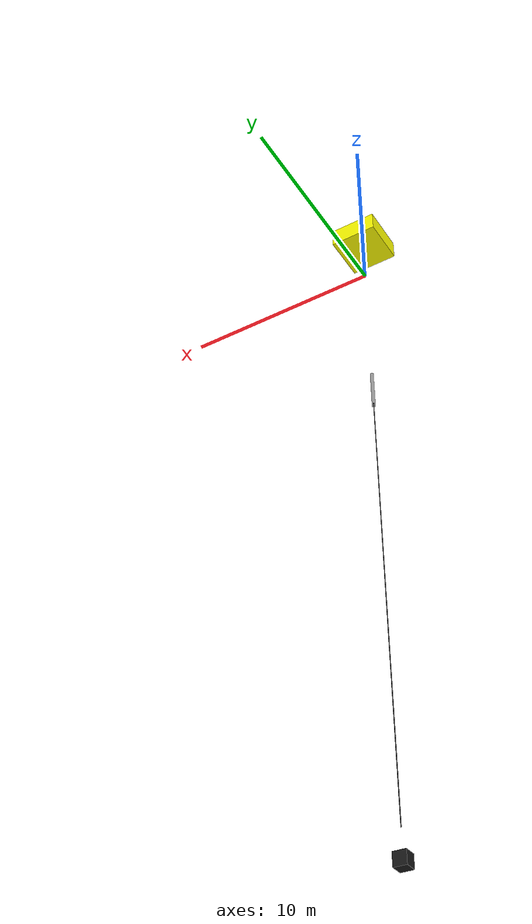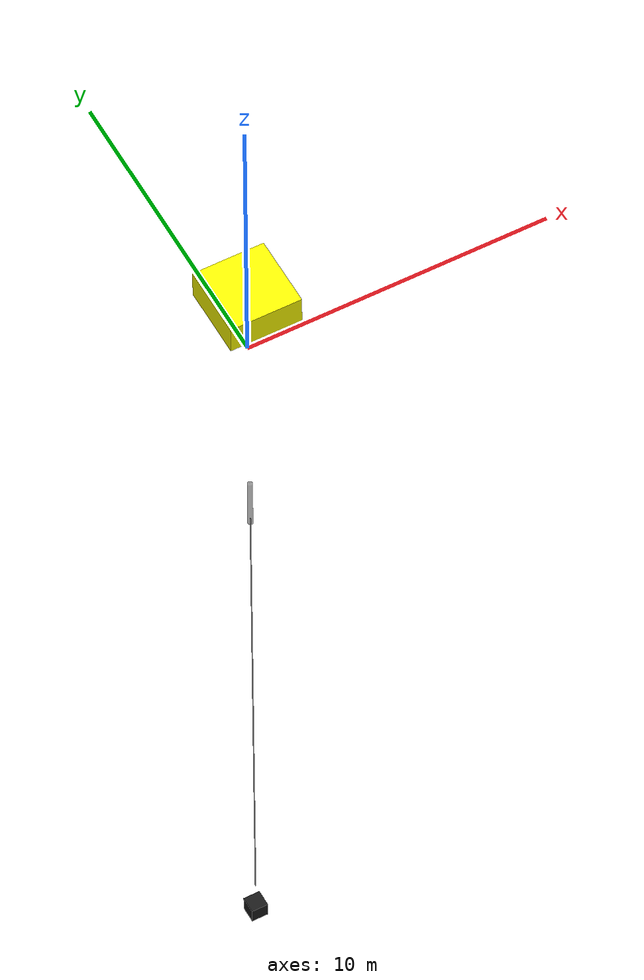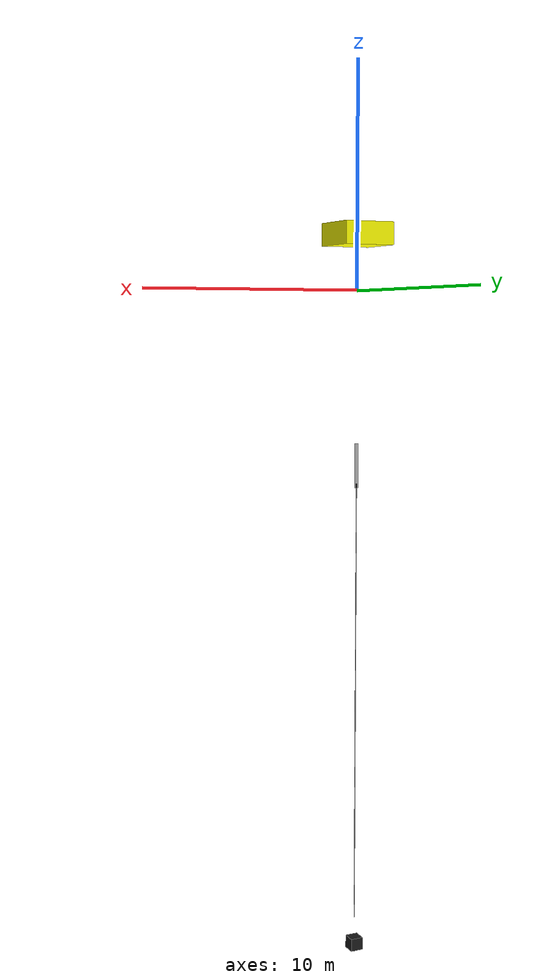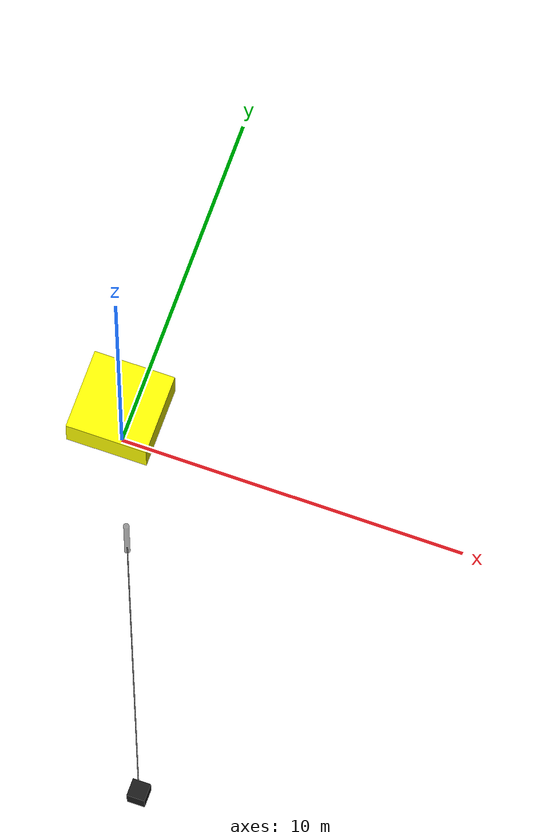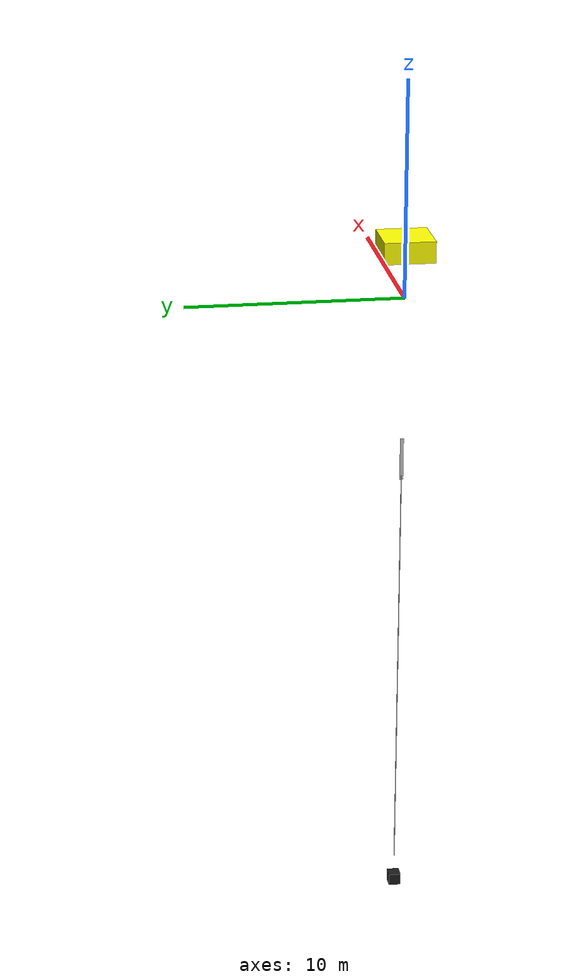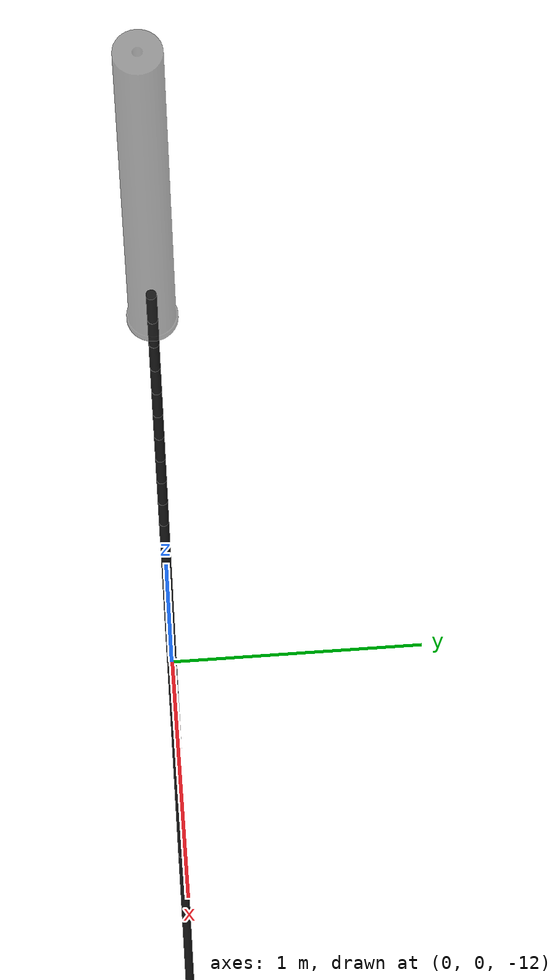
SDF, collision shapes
<?xml version="1.0" ?>
<sdf version="1.7">
    <model name="Hydraulics Test">

      <link name="Buoy">
        <pose relative_to="__model__">0 0 0 0 0 0</pose>
        <inertial>
            <pose>0 0 2.13 0 0 0</pose>
            <mass>1400</mass>
            <inertia>
                <ixx>1429</ixx>
                <ixy>6.77</ixy>
                <ixz>4.69</ixz>
                <iyy>670.31</iyy>
                <iyz>30.5</iyz>
                <izz>1476</izz>
            </inertia>
        </inertial>
        <visual name="visual_Buoy">
            <geometry>
                <mesh>
                    <uri>package://buoy_description/models/mbari_wec/meshes/buoy_float.stl</uri>
                </mesh>
            </geometry>
            <!--color-->
            <material>
                <ambient>1.0 1.0 0.0 1</ambient>
                <diffuse>1.0 1.0 0.0 1</diffuse>
                <specular>1.0 1.0 0.0 1</specular>
            </material>
        </visual>
        <collision name="collision">
            <pose>0 0 2.46 0 0 0 </pose>
            <geometry>
                <box>
                    <size>2.34 2.34 1</size>
                </box>
            </geometry>
        </collision>
        <sensor name='xbow_imu' type='imu'>
        <topic>Buoy_link/xbow_imu</topic>
        <update_rate>50</update_rate>
        <imu>
          <orientation_reference_frame>
            <localization>ENU</localization>
          </orientation_reference_frame>
        </imu>
        <always_on>1</always_on>
        <visualize>true</visualize>
      </sensor>
     </link>

     <link name="PTO">
        <pose relative_to="Buoy">0 0 0 0 0 0</pose>
        <inertial>
            <pose>0 0 -3.67 0 0 0</pose>
            <mass>605</mass>
            <inertia>
            <ixx>3219</ixx>
            <ixy>-0.43</ixy>
            <ixz>-2.56</ixz>
            <iyy>3219</iyy>
            <iyz>3.37</iyz>
            <izz>7.28</izz>
            </inertia>
        </inertial>
        <visual name="visual_PTO">
            <geometry>
                <mesh>
                    <uri>package://buoy_description/models/mbari_wec/meshes/pto.stl</uri>
                </mesh>
            </geometry>
            <!--color-->
            <material>
                <ambient>.2 .2 0.2 0.5</ambient>
                <diffuse>.2 .2 0.2 0.5</diffuse>
                <specular>.2 .2 0.2 0.5</specular>
            </material>
        </visual>
        <collision name="collision">
            <geometry>
                <mesh>
                    <uri>package://buoy_description/models/mbari_wec/meshes/pto_collision.stl</uri>
                </mesh>
           </geometry>
        </collision>
      </link>

    <link name="Piston">
      <pose relative_to="PTO">0 0 -3.50066 0 0 0</pose>
      <inertial>
        <mass>48</mass>
        <pose>0 0 -2.57934 0 0 0</pose>
        <inertia>
          <ixx>128</ixx>
          <ixy>0</ixy>
          <ixz>0</ixz>
          <iyy>128</iyy>
          <iyz>0</iyz>
          <izz>0.0216</izz>
        </inertia>
      </inertial>
      <visual name="visual_Piston">
        <geometry>
          <mesh>
            <uri>package://buoy_description/models/mbari_wec/meshes/rod_and_piston.stl</uri>
          </mesh>
        </geometry>
        <!--color-->
        <material>
          <ambient>0.0 0.0 1.0 1</ambient>
          <diffuse>0.0 0.0 1.0 1</diffuse>
          <specular>0.0 0.0 1.0 1</specular>
        </material>
      </visual>
    </link>

    <frame name="PistonBottom" attached_to="Piston">
      <pose>0 0 -5.08 0 0 0</pose>
    </frame>

    <!-- start tether top -->
    <link name="tether_top_0">
      <pose relative_to="PistonBottom">0 0 -0.1 0 0 0</pose>
      <inertial>
        <mass>0.7638615247394779</mass>
        <inertia>
          <ixx>0.002615506896710369</ixx>
          <iyy>0.002615506896710369</iyy>
          <izz>0.0001386036284908842</izz>
        </inertia>
      </inertial>
      <visual name="visual_tether_top_0">
        <geometry>
          <cylinder>
            <radius>0.01905</radius>
            <length>0.2</length>
          </cylinder>
        </geometry>
        <material>
          <ambient>0.1 0.1 .1 1</ambient>
          <diffuse>0.1 0.1 .1 1</diffuse>
          <specular>0.1 0.1 .1 1</specular>
        </material>
      </visual>
      <collision name="collision">
        <geometry>
          <cylinder>
            <radius>0.01905</radius>
            <length>0.2</length>
          </cylinder>
        </geometry>
      </collision>
    </link>

    <joint name="tether_top_joint_0" type="fixed">
      <pose>0 0 0.1 0 0 0</pose>
      <parent>Piston</parent>
      <child>tether_top_0</child>
    </joint>
    <link name="tether_top_1">
      <pose relative_to="PistonBottom">0 0 -0.30000000000000004 0 0 0</pose>
      <inertial>
        <mass>0.7638615247394779</mass>
        <inertia>
          <ixx>0.002615506896710369</ixx>
          <iyy>0.002615506896710369</iyy>
          <izz>0.0001386036284908842</izz>
        </inertia>
      </inertial>
      <visual name="visual_tether_top_1">
        <geometry>
          <cylinder>
            <radius>0.01905</radius>
            <length>0.2</length>
          </cylinder>
        </geometry>
        <material>
          <ambient>0.1 0.1 .1 1</ambient>
          <diffuse>0.1 0.1 .1 1</diffuse>
          <specular>0.1 0.1 .1 1</specular>
        </material>
      </visual>
      <collision name="collision">
        <geometry>
          <cylinder>
            <radius>0.01905</radius>
            <length>0.2</length>
          </cylinder>
        </geometry>
      </collision>
    </link>

    <joint name="tether_top_joint_1" type="fixed">
      <pose>0 0 0.1 0 0 0</pose>
      <parent>tether_top_0</parent>
      <child>tether_top_1</child>
    </joint>
    <link name="tether_top_2">
      <pose relative_to="PistonBottom">0 0 -0.5 0 0 0</pose>
      <inertial>
        <mass>0.7638615247394779</mass>
        <inertia>
          <ixx>0.002615506896710369</ixx>
          <iyy>0.002615506896710369</iyy>
          <izz>0.0001386036284908842</izz>
        </inertia>
      </inertial>
      <visual name="visual_tether_top_2">
        <geometry>
          <cylinder>
            <radius>0.01905</radius>
            <length>0.2</length>
          </cylinder>
        </geometry>
        <material>
          <ambient>0.1 0.1 .1 1</ambient>
          <diffuse>0.1 0.1 .1 1</diffuse>
          <specular>0.1 0.1 .1 1</specular>
        </material>
      </visual>
      <collision name="collision">
        <geometry>
          <cylinder>
            <radius>0.01905</radius>
            <length>0.2</length>
          </cylinder>
        </geometry>
      </collision>
    </link>

    <joint name="tether_top_joint_2" type="fixed">
      <pose>0 0 0.1 0 0 0</pose>
      <parent>tether_top_1</parent>
      <child>tether_top_2</child>
    </joint>
    <link name="tether_top_3">
      <pose relative_to="PistonBottom">0 0 -0.7000000000000001 0 0 0</pose>
      <inertial>
        <mass>0.7638615247394779</mass>
        <inertia>
          <ixx>0.002615506896710369</ixx>
          <iyy>0.002615506896710369</iyy>
          <izz>0.0001386036284908842</izz>
        </inertia>
      </inertial>
      <visual name="visual_tether_top_3">
        <geometry>
          <cylinder>
            <radius>0.01905</radius>
            <length>0.2</length>
          </cylinder>
        </geometry>
        <material>
          <ambient>0.1 0.1 .1 1</ambient>
          <diffuse>0.1 0.1 .1 1</diffuse>
          <specular>0.1 0.1 .1 1</specular>
        </material>
      </visual>
      <collision name="collision">
        <geometry>
          <cylinder>
            <radius>0.01905</radius>
            <length>0.2</length>
          </cylinder>
        </geometry>
      </collision>
    </link>

    <joint name="tether_top_joint_3" type="fixed">
      <pose>0 0 0.1 0 0 0</pose>
      <parent>tether_top_2</parent>
      <child>tether_top_3</child>
    </joint>
    <link name="tether_top_4">
      <pose relative_to="PistonBottom">0 0 -0.9 0 0 0</pose>
      <inertial>
        <mass>0.7638615247394779</mass>
        <inertia>
          <ixx>0.002615506896710369</ixx>
          <iyy>0.002615506896710369</iyy>
          <izz>0.0001386036284908842</izz>
        </inertia>
      </inertial>
      <visual name="visual_tether_top_4">
        <geometry>
          <cylinder>
            <radius>0.01905</radius>
            <length>0.2</length>
          </cylinder>
        </geometry>
        <material>
          <ambient>0.1 0.1 .1 1</ambient>
          <diffuse>0.1 0.1 .1 1</diffuse>
          <specular>0.1 0.1 .1 1</specular>
        </material>
      </visual>
      <collision name="collision">
        <geometry>
          <cylinder>
            <radius>0.01905</radius>
            <length>0.2</length>
          </cylinder>
        </geometry>
      </collision>
    </link>

    <joint name="tether_top_joint_4" type="fixed">
      <pose>0 0 0.1 0 0 0</pose>
      <parent>tether_top_3</parent>
      <child>tether_top_4</child>
    </joint>
    <link name="tether_top_5">
      <pose relative_to="PistonBottom">0 0 -1.1 0 0 0</pose>
      <inertial>
        <mass>0.7638615247394779</mass>
        <inertia>
          <ixx>0.002615506896710369</ixx>
          <iyy>0.002615506896710369</iyy>
          <izz>0.0001386036284908842</izz>
        </inertia>
      </inertial>
      <visual name="visual_tether_top_5">
        <geometry>
          <cylinder>
            <radius>0.01905</radius>
            <length>0.2</length>
          </cylinder>
        </geometry>
        <material>
          <ambient>0.1 0.1 .1 1</ambient>
          <diffuse>0.1 0.1 .1 1</diffuse>
          <specular>0.1 0.1 .1 1</specular>
        </material>
      </visual>
      <collision name="collision">
        <geometry>
          <cylinder>
            <radius>0.01905</radius>
            <length>0.2</length>
          </cylinder>
        </geometry>
      </collision>
    </link>

    <joint name="tether_top_joint_5" type="fixed">
      <pose>0 0 0.1 0 0 0</pose>
      <parent>tether_top_4</parent>
      <child>tether_top_5</child>
    </joint>
    <link name="tether_top_6">
      <pose relative_to="PistonBottom">0 0 -1.3 0 0 0</pose>
      <inertial>
        <mass>0.7638615247394779</mass>
        <inertia>
          <ixx>0.002615506896710369</ixx>
          <iyy>0.002615506896710369</iyy>
          <izz>0.0001386036284908842</izz>
        </inertia>
      </inertial>
      <visual name="visual_tether_top_6">
        <geometry>
          <cylinder>
            <radius>0.01905</radius>
            <length>0.2</length>
          </cylinder>
        </geometry>
        <material>
          <ambient>0.1 0.1 .1 1</ambient>
          <diffuse>0.1 0.1 .1 1</diffuse>
          <specular>0.1 0.1 .1 1</specular>
        </material>
      </visual>
      <collision name="collision">
        <geometry>
          <cylinder>
            <radius>0.01905</radius>
            <length>0.2</length>
          </cylinder>
        </geometry>
      </collision>
    </link>

    <joint name="tether_top_joint_6" type="fixed">
      <pose>0 0 0.1 0 0 0</pose>
      <parent>tether_top_5</parent>
      <child>tether_top_6</child>
    </joint>
    <link name="tether_top_7">
      <pose relative_to="PistonBottom">0 0 -1.5 0 0 0</pose>
      <inertial>
        <mass>0.7638615247394779</mass>
        <inertia>
          <ixx>0.002615506896710369</ixx>
          <iyy>0.002615506896710369</iyy>
          <izz>0.0001386036284908842</izz>
        </inertia>
      </inertial>
      <visual name="visual_tether_top_7">
        <geometry>
          <cylinder>
            <radius>0.01905</radius>
            <length>0.2</length>
          </cylinder>
        </geometry>
        <material>
          <ambient>0.1 0.1 .1 1</ambient>
          <diffuse>0.1 0.1 .1 1</diffuse>
          <specular>0.1 0.1 .1 1</specular>
        </material>
      </visual>
      <collision name="collision">
        <geometry>
          <cylinder>
            <radius>0.01905</radius>
            <length>0.2</length>
          </cylinder>
        </geometry>
      </collision>
    </link>

    <joint name="tether_top_joint_7" type="fixed">
      <pose>0 0 0.1 0 0 0</pose>
      <parent>tether_top_6</parent>
      <child>tether_top_7</child>
    </joint>
    <link name="tether_top_8">
      <pose relative_to="PistonBottom">0 0 -1.7000000000000002 0 0 0</pose>
      <inertial>
        <mass>0.7638615247394779</mass>
        <inertia>
          <ixx>0.002615506896710369</ixx>
          <iyy>0.002615506896710369</iyy>
          <izz>0.0001386036284908842</izz>
        </inertia>
      </inertial>
      <visual name="visual_tether_top_8">
        <geometry>
          <cylinder>
            <radius>0.01905</radius>
            <length>0.2</length>
          </cylinder>
        </geometry>
        <material>
          <ambient>0.1 0.1 .1 1</ambient>
          <diffuse>0.1 0.1 .1 1</diffuse>
          <specular>0.1 0.1 .1 1</specular>
        </material>
      </visual>
      <collision name="collision">
        <geometry>
          <cylinder>
            <radius>0.01905</radius>
            <length>0.2</length>
          </cylinder>
        </geometry>
      </collision>
    </link>

    <joint name="tether_top_joint_8" type="fixed">
      <pose>0 0 0.1 0 0 0</pose>
      <parent>tether_top_7</parent>
      <child>tether_top_8</child>
    </joint>
    <link name="tether_top_9">
      <pose relative_to="PistonBottom">0 0 -1.9000000000000001 0 0 0</pose>
      <inertial>
        <mass>0.7638615247394779</mass>
        <inertia>
          <ixx>0.002615506896710369</ixx>
          <iyy>0.002615506896710369</iyy>
          <izz>0.0001386036284908842</izz>
        </inertia>
      </inertial>
      <visual name="visual_tether_top_9">
        <geometry>
          <cylinder>
            <radius>0.01905</radius>
            <length>0.2</length>
          </cylinder>
        </geometry>
        <material>
          <ambient>0.1 0.1 .1 1</ambient>
          <diffuse>0.1 0.1 .1 1</diffuse>
          <specular>0.1 0.1 .1 1</specular>
        </material>
      </visual>
      <collision name="collision">
        <geometry>
          <cylinder>
            <radius>0.01905</radius>
            <length>0.2</length>
          </cylinder>
        </geometry>
      </collision>
    </link>

    <joint name="tether_top_joint_9" type="fixed">
      <pose>0 0 0.1 0 0 0</pose>
      <parent>tether_top_8</parent>
      <child>tether_top_9</child>
    </joint>
    <!-- end tether top -->

    <!-- start tether bottom -->
    <link name="tether_bottom_0">
      <pose relative_to="PistonBottom">0 0 -2.915 0 0 0</pose>
      <inertial>
        <mass>6.989332951366223</mass>
        <inertia>
          <ixx>1.9511822050028749</ixx>
          <iyy>1.9511822050028749</iyy>
          <izz>0.0012682232006915905</izz>
        </inertia>
      </inertial>
      <visual name="visual_tether_bottom_0">
        <geometry>
          <cylinder>
            <radius>0.01905</radius>
            <length>1.83</length>
          </cylinder>
        </geometry>
        <material>
          <ambient>0.1 0.1 .1 1</ambient>
          <diffuse>0.1 0.1 .1 1</diffuse>
          <specular>0.1 0.1 .1 1</specular>
        </material>
      </visual>
      <collision name="collision">
        <geometry>
          <cylinder>
            <radius>0.01905</radius>
            <length>1.83</length>
          </cylinder>
        </geometry>
      </collision>
    </link>

    <joint name="tether_bottom_joint_0" type="fixed">
      <pose>0 0 0.915 0 0 0</pose>
      <parent>tether_top_9</parent>
      <child>tether_bottom_0</child>
    </joint>
    <link name="tether_bottom_1">
      <pose relative_to="PistonBottom">0 0 -4.745 0 0 0</pose>
      <inertial>
        <mass>6.989332951366223</mass>
        <inertia>
          <ixx>1.9511822050028749</ixx>
          <iyy>1.9511822050028749</iyy>
          <izz>0.0012682232006915905</izz>
        </inertia>
      </inertial>
      <visual name="visual_tether_bottom_1">
        <geometry>
          <cylinder>
            <radius>0.01905</radius>
            <length>1.83</length>
          </cylinder>
        </geometry>
        <material>
          <ambient>0.1 0.1 .1 1</ambient>
          <diffuse>0.1 0.1 .1 1</diffuse>
          <specular>0.1 0.1 .1 1</specular>
        </material>
      </visual>
      <collision name="collision">
        <geometry>
          <cylinder>
            <radius>0.01905</radius>
            <length>1.83</length>
          </cylinder>
        </geometry>
      </collision>
    </link>

    <joint name="tether_bottom_joint_1" type="fixed">
      <pose>0 0 0.915 0 0 0</pose>
      <parent>tether_bottom_0</parent>
      <child>tether_bottom_1</child>
    </joint>
    <link name="tether_bottom_2">
      <pose relative_to="PistonBottom">0 0 -6.575 0 0 0</pose>
      <inertial>
        <mass>6.989332951366223</mass>
        <inertia>
          <ixx>1.9511822050028749</ixx>
          <iyy>1.9511822050028749</iyy>
          <izz>0.0012682232006915905</izz>
        </inertia>
      </inertial>
      <visual name="visual_tether_bottom_2">
        <geometry>
          <cylinder>
            <radius>0.01905</radius>
            <length>1.83</length>
          </cylinder>
        </geometry>
        <material>
          <ambient>0.1 0.1 .1 1</ambient>
          <diffuse>0.1 0.1 .1 1</diffuse>
          <specular>0.1 0.1 .1 1</specular>
        </material>
      </visual>
      <collision name="collision">
        <geometry>
          <cylinder>
            <radius>0.01905</radius>
            <length>1.83</length>
          </cylinder>
        </geometry>
      </collision>
    </link>

    <joint name="tether_bottom_joint_2" type="fixed">
      <pose>0 0 0.915 0 0 0</pose>
      <parent>tether_bottom_1</parent>
      <child>tether_bottom_2</child>
    </joint>
    <link name="tether_bottom_3">
      <pose relative_to="PistonBottom">0 0 -8.405000000000001 0 0 0</pose>
      <inertial>
        <mass>6.989332951366223</mass>
        <inertia>
          <ixx>1.9511822050028749</ixx>
          <iyy>1.9511822050028749</iyy>
          <izz>0.0012682232006915905</izz>
        </inertia>
      </inertial>
      <visual name="visual_tether_bottom_3">
        <geometry>
          <cylinder>
            <radius>0.01905</radius>
            <length>1.83</length>
          </cylinder>
        </geometry>
        <material>
          <ambient>0.1 0.1 .1 1</ambient>
          <diffuse>0.1 0.1 .1 1</diffuse>
          <specular>0.1 0.1 .1 1</specular>
        </material>
      </visual>
      <collision name="collision">
        <geometry>
          <cylinder>
            <radius>0.01905</radius>
            <length>1.83</length>
          </cylinder>
        </geometry>
      </collision>
    </link>

    <joint name="tether_bottom_joint_3" type="fixed">
      <pose>0 0 0.915 0 0 0</pose>
      <parent>tether_bottom_2</parent>
      <child>tether_bottom_3</child>
    </joint>
    <link name="tether_bottom_4">
      <pose relative_to="PistonBottom">0 0 -10.235 0 0 0</pose>
      <inertial>
        <mass>6.989332951366223</mass>
        <inertia>
          <ixx>1.9511822050028749</ixx>
          <iyy>1.9511822050028749</iyy>
          <izz>0.0012682232006915905</izz>
        </inertia>
      </inertial>
      <visual name="visual_tether_bottom_4">
        <geometry>
          <cylinder>
            <radius>0.01905</radius>
            <length>1.83</length>
          </cylinder>
        </geometry>
        <material>
          <ambient>0.1 0.1 .1 1</ambient>
          <diffuse>0.1 0.1 .1 1</diffuse>
          <specular>0.1 0.1 .1 1</specular>
        </material>
      </visual>
      <collision name="collision">
        <geometry>
          <cylinder>
            <radius>0.01905</radius>
            <length>1.83</length>
          </cylinder>
        </geometry>
      </collision>
    </link>

    <joint name="tether_bottom_joint_4" type="fixed">
      <pose>0 0 0.915 0 0 0</pose>
      <parent>tether_bottom_3</parent>
      <child>tether_bottom_4</child>
    </joint>
    <link name="tether_bottom_5">
      <pose relative_to="PistonBottom">0 0 -12.065000000000001 0 0 0</pose>
      <inertial>
        <mass>6.989332951366223</mass>
        <inertia>
          <ixx>1.9511822050028749</ixx>
          <iyy>1.9511822050028749</iyy>
          <izz>0.0012682232006915905</izz>
        </inertia>
      </inertial>
      <visual name="visual_tether_bottom_5">
        <geometry>
          <cylinder>
            <radius>0.01905</radius>
            <length>1.83</length>
          </cylinder>
        </geometry>
        <material>
          <ambient>0.1 0.1 .1 1</ambient>
          <diffuse>0.1 0.1 .1 1</diffuse>
          <specular>0.1 0.1 .1 1</specular>
        </material>
      </visual>
      <collision name="collision">
        <geometry>
          <cylinder>
            <radius>0.01905</radius>
            <length>1.83</length>
          </cylinder>
        </geometry>
      </collision>
    </link>

    <joint name="tether_bottom_joint_5" type="fixed">
      <pose>0 0 0.915 0 0 0</pose>
      <parent>tether_bottom_4</parent>
      <child>tether_bottom_5</child>
    </joint>
    <link name="tether_bottom_6">
      <pose relative_to="PistonBottom">0 0 -13.895 0 0 0</pose>
      <inertial>
        <mass>6.989332951366223</mass>
        <inertia>
          <ixx>1.9511822050028749</ixx>
          <iyy>1.9511822050028749</iyy>
          <izz>0.0012682232006915905</izz>
        </inertia>
      </inertial>
      <visual name="visual_tether_bottom_6">
        <geometry>
          <cylinder>
            <radius>0.01905</radius>
            <length>1.83</length>
          </cylinder>
        </geometry>
        <material>
          <ambient>0.1 0.1 .1 1</ambient>
          <diffuse>0.1 0.1 .1 1</diffuse>
          <specular>0.1 0.1 .1 1</specular>
        </material>
      </visual>
      <collision name="collision">
        <geometry>
          <cylinder>
            <radius>0.01905</radius>
            <length>1.83</length>
          </cylinder>
        </geometry>
      </collision>
    </link>

    <joint name="tether_bottom_joint_6" type="fixed">
      <pose>0 0 0.915 0 0 0</pose>
      <parent>tether_bottom_5</parent>
      <child>tether_bottom_6</child>
    </joint>
    <link name="tether_bottom_7">
      <pose relative_to="PistonBottom">0 0 -15.725000000000001 0 0 0</pose>
      <inertial>
        <mass>6.989332951366223</mass>
        <inertia>
          <ixx>1.9511822050028749</ixx>
          <iyy>1.9511822050028749</iyy>
          <izz>0.0012682232006915905</izz>
        </inertia>
      </inertial>
      <visual name="visual_tether_bottom_7">
        <geometry>
          <cylinder>
            <radius>0.01905</radius>
            <length>1.83</length>
          </cylinder>
        </geometry>
        <material>
          <ambient>0.1 0.1 .1 1</ambient>
          <diffuse>0.1 0.1 .1 1</diffuse>
          <specular>0.1 0.1 .1 1</specular>
        </material>
      </visual>
      <collision name="collision">
        <geometry>
          <cylinder>
            <radius>0.01905</radius>
            <length>1.83</length>
          </cylinder>
        </geometry>
      </collision>
    </link>

    <joint name="tether_bottom_joint_7" type="fixed">
      <pose>0 0 0.915 0 0 0</pose>
      <parent>tether_bottom_6</parent>
      <child>tether_bottom_7</child>
    </joint>
    <link name="tether_bottom_8">
      <pose relative_to="PistonBottom">0 0 -17.555 0 0 0</pose>
      <inertial>
        <mass>6.989332951366223</mass>
        <inertia>
          <ixx>1.9511822050028749</ixx>
          <iyy>1.9511822050028749</iyy>
          <izz>0.0012682232006915905</izz>
        </inertia>
      </inertial>
      <visual name="visual_tether_bottom_8">
        <geometry>
          <cylinder>
            <radius>0.01905</radius>
            <length>1.83</length>
          </cylinder>
        </geometry>
        <material>
          <ambient>0.1 0.1 .1 1</ambient>
          <diffuse>0.1 0.1 .1 1</diffuse>
          <specular>0.1 0.1 .1 1</specular>
        </material>
      </visual>
      <collision name="collision">
        <geometry>
          <cylinder>
            <radius>0.01905</radius>
            <length>1.83</length>
          </cylinder>
        </geometry>
      </collision>
    </link>

    <joint name="tether_bottom_joint_8" type="fixed">
      <pose>0 0 0.915 0 0 0</pose>
      <parent>tether_bottom_7</parent>
      <child>tether_bottom_8</child>
    </joint>
    <link name="tether_bottom_9">
      <pose relative_to="PistonBottom">0 0 -19.385 0 0 0</pose>
      <inertial>
        <mass>6.989332951366223</mass>
        <inertia>
          <ixx>1.9511822050028749</ixx>
          <iyy>1.9511822050028749</iyy>
          <izz>0.0012682232006915905</izz>
        </inertia>
      </inertial>
      <visual name="visual_tether_bottom_9">
        <geometry>
          <cylinder>
            <radius>0.01905</radius>
            <length>1.83</length>
          </cylinder>
        </geometry>
        <material>
          <ambient>0.1 0.1 .1 1</ambient>
          <diffuse>0.1 0.1 .1 1</diffuse>
          <specular>0.1 0.1 .1 1</specular>
        </material>
      </visual>
      <collision name="collision">
        <geometry>
          <cylinder>
            <radius>0.01905</radius>
            <length>1.83</length>
          </cylinder>
        </geometry>
      </collision>
    </link>

    <joint name="tether_bottom_joint_9" type="fixed">
      <pose>0 0 0.915 0 0 0</pose>
      <parent>tether_bottom_8</parent>
      <child>tether_bottom_9</child>
    </joint>

    <joint name="TetherToHeaveCone" type="fixed">
      <parent>tether_bottom_9</parent>
      <child>HeaveCone</child>
    </joint>
    <!-- end tether bottom -->

    <link name="HeaveCone">
      <pose relative_to="PistonBottom">0 0 -20.3 0 0 0</pose>
      <inertial>
        <pose>0 0 -1.25 0 0 0</pose>
        <mass>807</mass>
        <inertia>
          <ixx>339.8</ixx>
          <ixy>0.16</ixy>
          <ixz>-0.29</ixz>
          <iyy>343.73</iyy>
          <iyz>0.33</iyz>
          <izz>613.52</izz>
        </inertia>
      </inertial>
      <visual name="visual_HeaveCone">
        <geometry>
          <mesh>
            <uri>package://buoy_description/models/mbari_wec/meshes/heave_cone.stl</uri>
          </mesh>
        </geometry>
        <!--color-->
        <material>
          <ambient>0.1 0.1 .1 1</ambient>
          <diffuse>0.1 0.1 .1 1</diffuse>
          <specular>0.1 0.1 .1 1</specular>
        </material>
      </visual>
      <collision name="collision">
        <pose>0 0 -1.21 0 0 0 </pose>
        <geometry>
          <box>
            <size>0.578 0.578 0.5771</size>
          </box>
        </geometry>
      </collision>
    </link>

    <link name="Trefoil">
      <pose relative_to="HeaveCone">0 0 0 0 0 0</pose>
      <inertial>
        <pose>0 0 -1.25 0 0 0</pose>
        <!-- TODO(chapulina) Get real values -->
        <mass>10</mass>
        <inertia>
          <ixx>10</ixx>
          <ixy>0</ixy>
          <ixz>0</ixz>
          <iyy>10</iyy>
          <iyz>0</iyz>
          <izz>19.9</izz>
        </inertia>
      </inertial>
      <visual name="visual_Trefoil">
        <geometry>
          <mesh>
            <uri>package://buoy_description/models/mbari_wec/meshes/trefoil.stl</uri>
          </mesh>
        </geometry>
        <!--color-->
        <material>
          <ambient>0.1 0.1 .1 1</ambient>
          <diffuse>0.1 0.1 .1 1</diffuse>
          <specular>0.1 0.1 .1 1</specular>
        </material>
      </visual>
    </link>

    <joint name="Universal" type="fixed">
      <parent>Buoy</parent>
      <child>PTO</child>
      <provide_feedback>1</provide_feedback>
      <pose>0.0 0.0 0.0 0 0 0</pose>
      <sensor name="force_torque_sensor" type="force_torque">
        <always_on>true</always_on>
        <update_rate>50</update_rate>
        <visualize>true</visualize>
        <topic>Universal_joint/force_torque</topic>
        <force_torque>
          <frame>sensor</frame>
          <measure_direction>parent_to_child</measure_direction>
        </force_torque>
      </sensor>
    </joint>

    <joint name="HydraulicRam" type="prismatic">
      <parent>PTO</parent>
      <child>Piston</child>
      <pose>0.0 0.0 0.0 0 0 0</pose>
      <axis>
        <limit>
          <lower>0.0</lower>
          <upper>2.03</upper>
        </limit>
        <xyz>0.0 0.0 1.0</xyz>
      </axis>
    </joint>

    <joint name="TrefoilDoors" type="revolute">
      <parent>HeaveCone</parent>
      <child>Trefoil</child>
      <provide_feedback>1</provide_feedback>
      <pose>0.0 0.0 0.0 0 0 0</pose>
      <axis>
        <limit>
          <lower>0.0</lower>
          <upper>1.047</upper>
        </limit>
        <xyz>0.0 0.0 1.0</xyz>
      </axis>
    </joint>

    <plugin
        filename="ignition-gazebo-joint-state-publisher-system"
        name="ignition::gazebo::systems::JointStatePublisher">
    </plugin>
    </model>
</sdf>
